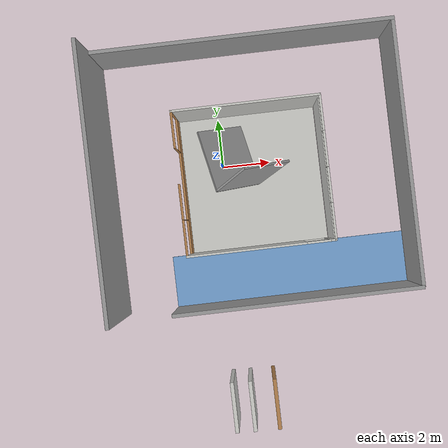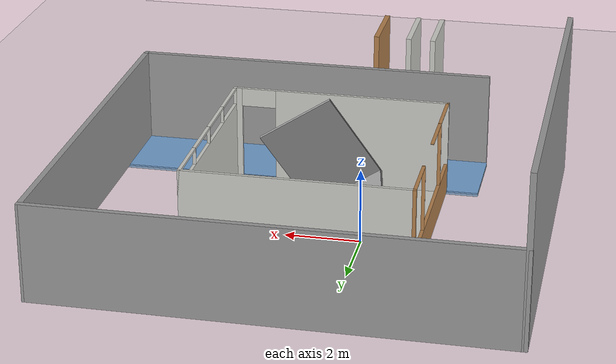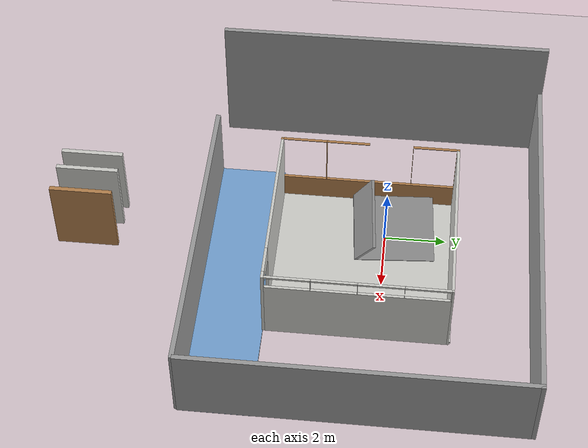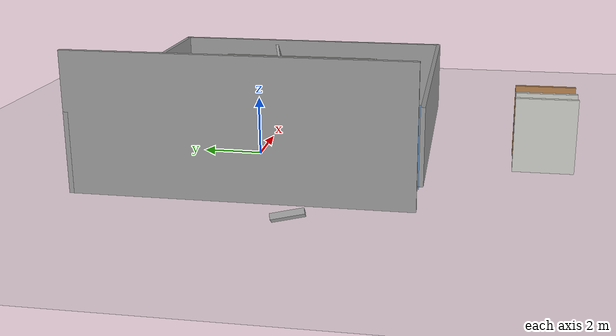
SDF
<sdf version="1.7">
 <world name="default">
  <light name="sun" type="directional">
   <pose>0 0 10 0 -0 0</pose>
   <diffuse>0.8 0.8 0.8 1</diffuse>
   <specular>0.2 0.2 0.2 1</specular>
   <attenuation>
    <range>1000</range>
    <constant>0.9</constant>
    <linear>0.01</linear>
    <quadratic>0.001</quadratic>
   </attenuation>
   <direction>0.01 0.01 -0.9</direction>
   <spot><inner_angle>0</inner_angle><outer_angle>0</outer_angle><falloff>0</falloff></spot>
   <include><uri>model://pedestal_ur5</uri></include>
  </light>
  <model name="ground_plane">
   <static>1</static>
   <link name="link">
    <collision name="collision">
     <geometry><plane><normal>0 0 1</normal><size>100 100</size></plane></geometry>
     <surface>
      <contact><collide_bitmask>65535</collide_bitmask></contact>
      <friction><ode><mu>100</mu><mu2>50</mu2></ode></friction>
     </surface>
    </collision>
    <visual name="visual">
     <cast_shadows>0</cast_shadows>
     <geometry><plane><normal>0 0 1</normal><size>100 100</size></plane></geometry>
     <material>
      <script><uri>file://media/materials/scripts/gazebo.material</uri><name>Gazebo/Grey</name></script>
     </material>
    </visual>
   </link>
  </model>
  <gravity>0 0 -9.8</gravity>
  <magnetic_field>6e-06 2.3e-05 -4.2e-05</magnetic_field>
  <atmosphere type="adiabatic"/>
  <physics name="default_physics" default="0" type="ode">
   <max_step_size>0.001</max_step_size>
   <real_time_factor>1</real_time_factor>
   <real_time_update_rate>1000</real_time_update_rate>
  </physics>
  <scene><ambient>0.4 0.4 0.4 1</ambient><background>0.7 0.7 0.7 1</background><shadows>1</shadows></scene>
  <spherical_coordinates>
   <surface_model>EARTH_WGS84</surface_model>
   <latitude_deg>0</latitude_deg>
   <longitude_deg>0</longitude_deg>
   <elevation>0</elevation>
   <heading_deg>0</heading_deg>
  </spherical_coordinates>
  <model name="B75_Room">
   <pose>1.23 -0.68 0 0 -0 0</pose>
   <link name="Wall_0">
    <pose>-2.94 0 0 0 -0 1.5708</pose>
    <visual name="Wall_0_Visual_0">
     <pose>-2.87782 0 1.305 0 -0 0</pose>
     <geometry><box><size>0.084362 0.09 2.61</size></box></geometry>
     <material>
      <script><uri>file://media/materials/scripts/gazebo.material</uri><name>Gazebo/Wood</name></script>
      <ambient>0.8 0.8 0.8 1</ambient>
     </material>
     <meta><layer>0</layer></meta>
    </visual>
    <collision name="Wall_0_Collision_0">
     <geometry><box><size>0.084362 0.09 2.61</size></box></geometry>
     <pose>-2.87782 0 1.305 0 -0 0</pose>
    </collision>
    <visual name="Wall_0_Visual_1">
     <pose>0.042181 0 0.425 0 -0 0</pose>
     <geometry><box><size>5.75564 0.09 0.85</size></box></geometry>
     <material>
      <script><uri>file://media/materials/scripts/gazebo.material</uri><name>Gazebo/Wood</name></script>
      <ambient>0.8 0.8 0.8 1</ambient>
     </material>
     <meta><layer>0</layer></meta>
    </visual>
    <collision name="Wall_0_Collision_1">
     <geometry><box><size>5.75564 0.09 0.85</size></box></geometry>
     <pose>0.042181 0 0.425 0 -0 0</pose>
    </collision>
    <visual name="Wall_0_Visual_2">
     <pose>-1.41237 0 1.73 0 -0 0</pose>
     <geometry><box><size>0.026548 0.09 1.76</size></box></geometry>
     <material>
      <script><uri>file://media/materials/scripts/gazebo.material</uri><name>Gazebo/Wood</name></script>
      <ambient>0.8 0.8 0.8 1</ambient>
     </material>
     <meta><layer>0</layer></meta>
    </visual>
    <collision name="Wall_0_Collision_2">
     <geometry><box><size>0.026548 0.09 1.76</size></box></geometry>
     <pose>-1.41237 0 1.73 0 -0 0</pose>
    </collision>
    <visual name="Wall_0_Visual_3">
     <pose>1.41154 0 1.73 0 -0 0</pose>
     <geometry><box><size>0.012383 0.09 1.76</size></box></geometry>
     <material>
      <script><uri>file://media/materials/scripts/gazebo.material</uri><name>Gazebo/Wood</name></script>
      <ambient>0.8 0.8 0.8 1</ambient>
     </material>
     <meta><layer>0</layer></meta>
    </visual>
    <collision name="Wall_0_Collision_3">
     <geometry><box><size>0.012383 0.09 1.76</size></box></geometry>
     <pose>1.41154 0 1.73 0 -0 0</pose>
    </collision>
    <visual name="Wall_0_Visual_4">
     <pose>2.87387 0 1.73 0 -0 0</pose>
     <geometry><box><size>0.092266 0.09 1.76</size></box></geometry>
     <material>
      <script><uri>file://media/materials/scripts/gazebo.material</uri><name>Gazebo/Wood</name></script>
      <ambient>0.8 0.8 0.8 1</ambient>
     </material>
     <meta><layer>0</layer></meta>
    </visual>
    <collision name="Wall_0_Collision_4">
     <geometry><box><size>0.092266 0.09 1.76</size></box></geometry>
     <pose>2.87387 0 1.73 0 -0 0</pose>
    </collision>
    <visual name="Wall_0_Visual_5">
     <pose>-2.13064 0 2.6 0 -0 0</pose>
     <geometry><box><size>1.41 0.09 0.02</size></box></geometry>
     <material>
      <script><uri>file://media/materials/scripts/gazebo.material</uri><name>Gazebo/Wood</name></script>
      <ambient>0.8 0.8 0.8 1</ambient>
     </material>
     <meta><layer>0</layer></meta>
    </visual>
    <collision name="Wall_0_Collision_5">
     <geometry><box><size>1.41 0.09 0.02</size></box></geometry>
     <pose>-2.13064 0 2.6 0 -0 0</pose>
    </collision>
    <visual name="Wall_0_Visual_6">
     <pose>-0.701869 0 2.6 0 -0 0</pose>
     <geometry><box><size>1.39444 0.09 0.02</size></box></geometry>
     <material>
      <script><uri>file://media/materials/scripts/gazebo.material</uri><name>Gazebo/Wood</name></script>
      <ambient>0.8 0.8 0.8 1</ambient>
     </material>
     <meta><layer>0</layer></meta>
    </visual>
    <collision name="Wall_0_Collision_6">
     <geometry><box><size>1.39444 0.09 0.02</size></box></geometry>
     <pose>-0.701869 0 2.6 0 -0 0</pose>
    </collision>
    <visual name="Wall_0_Visual_7">
     <pose>2.12273 0 2.6 0 -0 0</pose>
     <geometry><box><size>1.41 0.09 0.02</size></box></geometry>
     <material>
      <script><uri>file://media/materials/scripts/gazebo.material</uri><name>Gazebo/Wood</name></script>
      <ambient>0.8 0.8 0.8 1</ambient>
     </material>
     <meta><layer>0</layer></meta>
    </visual>
    <collision name="Wall_0_Collision_7">
     <geometry><box><size>1.41 0.09 0.02</size></box></geometry>
     <pose>2.12273 0 2.6 0 -0 0</pose>
    </collision>
   </link>
   <link name="Wall_2">
    <collision name="Wall_2_Collision">
     <geometry><box><size>5.97 0.09 2.61</size></box></geometry>
     <pose>0 0 1.305 0 -0 0</pose>
    </collision>
    <visual name="Wall_2_Visual">
     <pose>0 0 1.305 0 -0 0</pose>
     <geometry><box><size>5.97 0.09 2.61</size></box></geometry>
     <material>
      <script><uri>file://media/materials/scripts/gazebo.material</uri><name>Gazebo/CeilingTiled</name></script>
      <ambient>1 1 1 1</ambient>
     </material>
     <meta><layer>0</layer></meta>
    </visual>
    <pose>-0 2.875 0 0 -0 0</pose>
   </link>
   <link name="Wall_4">
    <pose>2.94 0 0 0 -0 -1.5708</pose>
    <visual name="Wall_4_Visual_0">
     <pose>-2.88914 0 1.305 0 -0 0</pose>
     <geometry><box><size>0.061715 0.09 2.61</size></box></geometry>
     <material>
      <script><uri>file://media/materials/scripts/gazebo.material</uri><name>Gazebo/CeilingTiled</name></script>
      <ambient>1 1 1 1</ambient>
     </material>
     <meta><layer>0</layer></meta>
    </visual>
    <collision name="Wall_4_Collision_0">
     <geometry><box><size>0.061715 0.09 2.61</size></box></geometry>
     <pose>-2.88914 0 1.305 0 -0 0</pose>
    </collision>
    <visual name="Wall_4_Visual_1">
     <pose>0.030858 0 1.075 0 -0 0</pose>
     <geometry><box><size>5.77829 0.09 2.15</size></box></geometry>
     <material>
      <script><uri>file://media/materials/scripts/gazebo.material</uri><name>Gazebo/CeilingTiled</name></script>
      <ambient>1 1 1 1</ambient>
     </material>
     <meta><layer>0</layer></meta>
    </visual>
    <collision name="Wall_4_Collision_1">
     <geometry><box><size>5.77829 0.09 2.15</size></box></geometry>
     <pose>0.030858 0 1.075 0 -0 0</pose>
    </collision>
    <visual name="Wall_4_Visual_2">
     <pose>-1.44317 0 2.38 0 -0 0</pose>
     <geometry><box><size>0.010235 0.09 0.46</size></box></geometry>
     <material>
      <script><uri>file://media/materials/scripts/gazebo.material</uri><name>Gazebo/CeilingTiled</name></script>
      <ambient>1 1 1 1</ambient>
     </material>
     <meta><layer>0</layer></meta>
    </visual>
    <collision name="Wall_4_Collision_2">
     <geometry><box><size>0.010235 0.09 0.46</size></box></geometry>
     <pose>-1.44317 0 2.38 0 -0 0</pose>
    </collision>
    <visual name="Wall_4_Visual_3">
     <pose>-0.018549 0 2.38 0 -0 0</pose>
     <geometry><box><size>0.019002 0.09 0.46</size></box></geometry>
     <material>
      <script><uri>file://media/materials/scripts/gazebo.material</uri><name>Gazebo/CeilingTiled</name></script>
      <ambient>1 1 1 1</ambient>
     </material>
     <meta><layer>0</layer></meta>
    </visual>
    <collision name="Wall_4_Collision_3">
     <geometry><box><size>0.019002 0.09 0.46</size></box></geometry>
     <pose>-0.018549 0 2.38 0 -0 0</pose>
    </collision>
    <visual name="Wall_4_Visual_4">
     <pose>1.40747 0 2.38 0 -0 0</pose>
     <geometry><box><size>0.013027 0.09 0.46</size></box></geometry>
     <material>
      <script><uri>file://media/materials/scripts/gazebo.material</uri><name>Gazebo/CeilingTiled</name></script>
      <ambient>1 1 1 1</ambient>
     </material>
     <meta><layer>0</layer></meta>
    </visual>
    <collision name="Wall_4_Collision_4">
     <geometry><box><size>0.013027 0.09 0.46</size></box></geometry>
     <pose>1.40747 0 2.38 0 -0 0</pose>
    </collision>
    <visual name="Wall_4_Visual_5">
     <pose>2.87199 0 2.38 0 -0 0</pose>
     <geometry><box><size>0.096021 0.09 0.46</size></box></geometry>
     <material>
      <script><uri>file://media/materials/scripts/gazebo.material</uri><name>Gazebo/CeilingTiled</name></script>
      <ambient>1 1 1 1</ambient>
     </material>
     <meta><layer>0</layer></meta>
    </visual>
    <collision name="Wall_4_Collision_5">
     <geometry><box><size>0.096021 0.09 0.46</size></box></geometry>
     <pose>2.87199 0 2.38 0 -0 0</pose>
    </collision>
    <visual name="Wall_4_Visual_6">
     <pose>-2.15328 0 2.58 0 -0 0</pose>
     <geometry><box><size>1.41 0.09 0.06</size></box></geometry>
     <material>
      <script><uri>file://media/materials/scripts/gazebo.material</uri><name>Gazebo/CeilingTiled</name></script>
      <ambient>1 1 1 1</ambient>
     </material>
     <meta><layer>0</layer></meta>
    </visual>
    <collision name="Wall_4_Collision_6">
     <geometry><box><size>1.41 0.09 0.06</size></box></geometry>
     <pose>-2.15328 0 2.58 0 -0 0</pose>
    </collision>
    <visual name="Wall_4_Visual_7">
     <pose>-0.73305 0 2.58 0 -0 0</pose>
     <geometry><box><size>1.41 0.09 0.06</size></box></geometry>
     <material>
      <script><uri>file://media/materials/scripts/gazebo.material</uri><name>Gazebo/CeilingTiled</name></script>
      <ambient>1 1 1 1</ambient>
     </material>
     <meta><layer>0</layer></meta>
    </visual>
    <collision name="Wall_4_Collision_7">
     <geometry><box><size>1.41 0.09 0.06</size></box></geometry>
     <pose>-0.73305 0 2.58 0 -0 0</pose>
    </collision>
    <visual name="Wall_4_Visual_8">
     <pose>0.695952 0 2.58 0 -0 0</pose>
     <geometry><box><size>1.41 0.09 0.06</size></box></geometry>
     <material>
      <script><uri>file://media/materials/scripts/gazebo.material</uri><name>Gazebo/CeilingTiled</name></script>
      <ambient>1 1 1 1</ambient>
     </material>
     <meta><layer>0</layer></meta>
    </visual>
    <collision name="Wall_4_Collision_8">
     <geometry><box><size>1.41 0.09 0.06</size></box></geometry>
     <pose>0.695952 0 2.58 0 -0 0</pose>
    </collision>
    <visual name="Wall_4_Visual_9">
     <pose>2.11898 0 2.58 0 -0 0</pose>
     <geometry><box><size>1.41 0.09 0.06</size></box></geometry>
     <material>
      <script><uri>file://media/materials/scripts/gazebo.material</uri><name>Gazebo/CeilingTiled</name></script>
      <ambient>1 1 1 1</ambient>
     </material>
     <meta><layer>0</layer></meta>
    </visual>
    <collision name="Wall_4_Collision_9">
     <geometry><box><size>1.41 0.09 0.06</size></box></geometry>
     <pose>2.11898 0 2.58 0 -0 0</pose>
    </collision>
   </link>
   <link name="Wall_6">
    <pose>-0 -2.875 0 0 -0 3.14159</pose>
    <visual name="Wall_6_Visual_0">
     <pose>-2.86065 0 1.305 0 -0 0</pose>
     <geometry><box><size>0.248701 0.09 2.61</size></box></geometry>
     <material>
      <script><uri>file://media/materials/scripts/gazebo.material</uri><name>Gazebo/CeilingTiled</name></script>
      <ambient>1 1 1 1</ambient>
     </material>
     <meta><layer>0</layer></meta>
    </visual>
    <collision name="Wall_6_Collision_0">
     <geometry><box><size>0.248701 0.09 2.61</size></box></geometry>
     <pose>-2.86065 0 1.305 0 -0 0</pose>
    </collision>
    <visual name="Wall_6_Visual_1">
     <pose>0.594351 0 1.305 0 -0 0</pose>
     <geometry><box><size>4.7813 0.09 2.61</size></box></geometry>
     <material>
      <script><uri>file://media/materials/scripts/gazebo.material</uri><name>Gazebo/CeilingTiled</name></script>
      <ambient>1 1 1 1</ambient>
     </material>
     <meta><layer>0</layer></meta>
    </visual>
    <collision name="Wall_6_Collision_1">
     <geometry><box><size>4.7813 0.09 2.61</size></box></geometry>
     <pose>0.594351 0 1.305 0 -0 0</pose>
    </collision>
    <visual name="Wall_6_Visual_2">
     <pose>-2.2663 0 0 0 -0 0</pose>
     <geometry><box><size>0.94 0.09 0</size></box></geometry>
     <material>
      <script><uri>file://media/materials/scripts/gazebo.material</uri><name>Gazebo/CeilingTiled</name></script>
      <ambient>1 1 1 1</ambient>
     </material>
     <meta><layer>0</layer></meta>
    </visual>
    <collision name="Wall_6_Collision_2">
     <geometry><box><size>0.94 0.09 0</size></box></geometry>
     <pose>-2.2663 0 0 0 -0 0</pose>
    </collision>
    <visual name="Wall_6_Visual_3">
     <pose>-2.2663 0 2.355 0 -0 0</pose>
     <geometry><box><size>0.94 0.09 0.51</size></box></geometry>
     <material>
      <script><uri>file://media/materials/scripts/gazebo.material</uri><name>Gazebo/CeilingTiled</name></script>
      <ambient>1 1 1 1</ambient>
     </material>
     <meta><layer>0</layer></meta>
    </visual>
    <collision name="Wall_6_Collision_3">
     <geometry><box><size>0.94 0.09 0.51</size></box></geometry>
     <pose>-2.2663 0 2.355 0 -0 0</pose>
    </collision>
   </link>
   <static>1</static>
  </model>
  <model name="B75_Objects">
   <link name="link_1">
    <inertial>
     <mass>0.512265</mass>
     <inertia>
      <ixx>0.491819</ixx>
      <ixy>0</ixy>
      <ixz>0</ixz>
      <iyy>0.191424</iyy>
      <iyz>0</iyz>
      <izz>0.301106</izz>
     </inertia>
    </inertial>
    <pose>3.32698 1.4145 1.38303 0 -0 0</pose>
    <visual name="visual">
     <geometry><box><size>0.091197 2.65428 2.11001</size></box></geometry>
     <material>
      <lighting>1</lighting>
      <script><uri>file://media/materials/scripts/gazebo.material</uri><name>Gazebo/Grey</name></script>
      <shader type="pixel"><normal_map>__default__</normal_map></shader>
      <ambient>0.3 0.3 0.3 1</ambient>
      <diffuse>0.7 0.7 0.7 1</diffuse>
      <specular>0.01 0.01 0.01 1</specular>
      <emissive>0 0 0 1</emissive>
     </material>
    </visual>
    <collision name="collision">
     <geometry><box><size>0.091197 2.65428 2.11562</size></box></geometry>
     <surface>
      <friction>
       <ode><mu>1</mu><mu2>1</mu2><fdir1>0 0 0</fdir1><slip1>0</slip1><slip2>0</slip2></ode>
       <torsional>
        <coefficient>1</coefficient>
        <patch_radius>0</patch_radius>
        <surface_radius>0</surface_radius>
        <use_patch_radius>1</use_patch_radius>
        <ode><slip>0</slip></ode>
       </torsional>
      </friction>
      <bounce><restitution_coefficient>0</restitution_coefficient><threshold>1e+06</threshold></bounce>
      <contact>
       <collide_without_contact>0</collide_without_contact>
       <collide_without_contact_bitmask>1</collide_without_contact_bitmask>
       <collide_bitmask>1</collide_bitmask>
       <ode>
        <soft_cfm>0</soft_cfm>
        <soft_erp>0.2</soft_erp>
        <kp>1e+13</kp>
        <kd>1</kd>
        <max_vel>0.01</max_vel>
        <min_depth>0</min_depth>
       </ode>
       <bullet>
        <split_impulse>1</split_impulse>
        <split_impulse_penetration_threshold>-0.01</split_impulse_penetration_threshold>
        <soft_cfm>0</soft_cfm>
        <soft_erp>0.2</soft_erp>
        <kp>1e+13</kp>
        <kd>1</kd>
       </bullet>
      </contact>
     </surface>
    </collision>
   </link>
   <link name="link_2">
    <inertial>
     <mass>0.468337</mass>
     <inertia>
      <ixx>0.173142</ixx>
      <ixy>0</ixy>
      <ixz>0</ixz>
      <iyy>0.413506</iyy>
      <iyz>0</iyz>
      <izz>0.240991</izz>
     </inertia>
    </inertial>
    <pose>4.6132 0.122662 1.38303 0 -0 0</pose>
    <visual name="visual">
     <geometry><box><size>2.4833 0.089668 2.11</size></box></geometry>
     <material>
      <lighting>1</lighting>
      <script><uri>file://media/materials/scripts/gazebo.material</uri><name>Gazebo/Grey</name></script>
      <shader type="pixel"><normal_map>__default__</normal_map></shader>
      <ambient>0.3 0.3 0.3 1</ambient>
      <diffuse>0.7 0.7 0.7 1</diffuse>
      <specular>0.01 0.01 0.01 1</specular>
      <emissive>0 0 0 1</emissive>
     </material>
    </visual>
    <collision name="collision">
     <geometry><box><size>2.4833 0.089668 2.10436</size></box></geometry>
     <surface>
      <friction>
       <ode><mu>1</mu><mu2>1</mu2><fdir1>0 0 0</fdir1><slip1>0</slip1><slip2>0</slip2></ode>
       <torsional>
        <coefficient>1</coefficient>
        <patch_radius>0</patch_radius>
        <surface_radius>0</surface_radius>
        <use_patch_radius>1</use_patch_radius>
        <ode><slip>0</slip></ode>
       </torsional>
      </friction>
      <bounce><restitution_coefficient>0</restitution_coefficient><threshold>1e+06</threshold></bounce>
      <contact>
       <collide_without_contact>0</collide_without_contact>
       <collide_without_contact_bitmask>1</collide_without_contact_bitmask>
       <collide_bitmask>1</collide_bitmask>
       <ode>
        <soft_cfm>0</soft_cfm>
        <soft_erp>0.2</soft_erp>
        <kp>1e+13</kp>
        <kd>1</kd>
        <max_vel>0.01</max_vel>
        <min_depth>0</min_depth>
       </ode>
       <bullet>
        <split_impulse>1</split_impulse>
        <split_impulse_penetration_threshold>-0.01</split_impulse_penetration_threshold>
        <soft_cfm>0</soft_cfm>
        <soft_erp>0.2</soft_erp>
        <kp>1e+13</kp>
        <kd>1</kd>
       </bullet>
      </contact>
     </surface>
    </collision>
   </link>
   <link name="link_3">
    <inertial>
     <mass>0.133825</mass>
     <inertia>
      <ixx>0.0148882</ixx>
      <ixy>0</ixy>
      <ixz>0</ixz>
      <iyy>0.00433232</iyy>
      <iyz>0</iyz>
      <izz>0.0117483</izz>
     </inertia>
    </inertial>
    <pose>0.17373 0.768579 0.625903 0 -0 0</pose>
    <visual name="visual">
     <geometry><box><size>0.23 1.24 0.585</size></box></geometry>
     <material>
      <lighting>1</lighting>
      <script><uri>file://media/materials/scripts/gazebo.material</uri><name>Gazebo/Grey</name></script>
      <shader type="pixel"><normal_map>__default__</normal_map></shader>
      <ambient>0.3 0.3 0.3 1</ambient>
      <diffuse>0.7 0.7 0.7 1</diffuse>
      <specular>0.01 0.01 0.01 1</specular>
      <emissive>0 0 0 1</emissive>
     </material>
    </visual>
    <collision name="collision">
     <geometry><box><size>0.23 1.24 0.585</size></box></geometry>
     <surface>
      <friction>
       <ode><mu>1</mu><mu2>1</mu2><fdir1>0 0 0</fdir1><slip1>0</slip1><slip2>0</slip2></ode>
       <torsional>
        <coefficient>1</coefficient>
        <patch_radius>0</patch_radius>
        <surface_radius>0</surface_radius>
        <use_patch_radius>1</use_patch_radius>
        <ode><slip>0</slip></ode>
       </torsional>
      </friction>
      <bounce><restitution_coefficient>0</restitution_coefficient><threshold>1e+06</threshold></bounce>
      <contact>
       <collide_without_contact>0</collide_without_contact>
       <collide_without_contact_bitmask>1</collide_without_contact_bitmask>
       <collide_bitmask>1</collide_bitmask>
       <ode>
        <soft_cfm>0</soft_cfm>
        <soft_erp>0.2</soft_erp>
        <kp>1e+13</kp>
        <kd>1</kd>
        <max_vel>0.01</max_vel>
        <min_depth>0</min_depth>
       </ode>
       <bullet>
        <split_impulse>1</split_impulse>
        <split_impulse_penetration_threshold>-0.01</split_impulse_penetration_threshold>
        <soft_cfm>0</soft_cfm>
        <soft_erp>0.2</soft_erp>
        <kp>1e+13</kp>
        <kd>1</kd>
       </bullet>
      </contact>
     </surface>
    </collision>
   </link>
   <static>0</static>
   <pose>0.107159 -1.76806 -2.44656 -0.294975 -0.988911 0.455231</pose>
  </model>
  <model name="texture_test_2">
   <pose>0.285 -7.25691 0 0 -0 0</pose>
   <link name="Wall_0">
    <collision name="Wall_0_Collision">
     <geometry><box><size>2 0.15 2.5</size></box></geometry>
     <pose>0 0 1.25 0 -0 0</pose>
    </collision>
    <visual name="Wall_0_Visual">
     <pose>0 0 1.25 0 -0 0</pose>
     <geometry><box><size>2 0.15 2.5</size></box></geometry>
     <material>
      <script><uri>file://media/materials/scripts/gazebo.material</uri><name>Gazebo/Wood</name></script>
      <ambient>1 1 1 1</ambient>
     </material>
     <meta><layer>0</layer></meta>
    </visual>
    <pose>0.845 -2.4675 0 0 -0 -1.5708</pose>
   </link>
   <link name="Wall_2">
    <collision name="Wall_2_Collision">
     <geometry><box><size>2 0.15 2.5</size></box></geometry>
     <pose>0 0 1.25 0 -0 0</pose>
    </collision>
    <visual name="Wall_2_Visual">
     <pose>0 0 1.25 0 -0 0</pose>
     <geometry><box><size>2 0.15 2.5</size></box></geometry>
     <material>
      <script><uri>file://media/materials/scripts/gazebo.material</uri><name>Gazebo/CeilingTiled</name></script>
      <ambient>0.913725 0.72549 0.431373 1</ambient>
     </material>
     <meta><layer>0</layer></meta>
    </visual>
    <pose>-0.125 -2.4475 0 0 -0 -1.5708</pose>
   </link>
   <link name="Wall_4">
    <collision name="Wall_4_Collision">
     <geometry><box><size>2 0.15 2.5</size></box></geometry>
     <pose>0 0 1.25 0 -0 0</pose>
    </collision>
    <visual name="Wall_4_Visual">
     <pose>0 0 1.25 0 -0 0</pose>
     <geometry><box><size>2 0.15 2.5</size></box></geometry>
     <material>
      <script><uri>file://media/materials/scripts/gazebo.material</uri><name>Gazebo/CeilingTiled</name></script>
      <ambient>0.827451 0.843137 0.811765 1</ambient>
     </material>
     <meta><layer>0</layer></meta>
    </visual>
    <pose>-0.845 -2.4175 0 0 -0 -1.5708</pose>
   </link>
   <static>1</static>
  </model>
  <model name="b75_floor">
   <pose>1.21094 -0.610385 -0.055 0 -0 0</pose>
   <link name="Wall_0">
    <collision name="Wall_0_Collision">
     <geometry><box><size>5.81 5.8 0.1</size></box></geometry>
     <pose>0 0 0.05 -0.055 -0 0</pose>
    </collision>
    <visual name="Wall_0_Visual">
     <pose>0 0 0.01 0 -0 0</pose>
     <geometry><box><size>5.81 5.8 0.1</size></box></geometry>
     <material>
      <script><uri>file://media/materials/scripts/gazebo.material</uri><name>Gazebo/CeilingTiled</name></script>
      <ambient>1 0.764706 0.305882 1</ambient>
     </material>
     <meta><layer>0</layer></meta>
    </visual>
    <pose>0 -0 -0 0 -0 1.5708</pose>
   </link>
   <static>1</static>
  </model>
  <model name="b75_corridor">
   <pose>2.4025 -2.9375 0 0 -0 0</pose>
   <link name="Wall_2">
    <collision name="Wall_2_Collision">
     <geometry><box><size>10 0.15 2.6</size></box></geometry>
     <pose>0 0 1.3 0 -0 0</pose>
    </collision>
    <visual name="Wall_2_Visual">
     <pose>0 0 1.3 0 -0 0</pose>
     <geometry><box><size>10 0.15 2.6</size></box></geometry>
     <material>
      <script><uri>file://media/materials/scripts/gazebo.material</uri><name>Gazebo/Grey</name></script>
      <ambient>1 1 1 1</ambient>
     </material>
     <meta><layer>0</layer></meta>
    </visual>
    <pose>0.0095 -2.8625 0 0 -0 0</pose>
   </link>
   <link name="Wall_8">
    <collision name="Wall_8_Collision">
     <geometry><box><size>10 2.15 0.1</size></box></geometry>
     <pose>0 0 0.05 0 -0 0</pose>
    </collision>
    <visual name="Wall_8_Visual">
     <pose>0 0 -0.03 0 -0 0</pose>
     <geometry><box><size>10 2.15 0.1</size></box></geometry>
     <material>
      <script><uri>file://media/materials/scripts/gazebo.material</uri><name>Gazebo/Grey</name></script>
      <ambient>0.447059 0.623529 0.811765 1</ambient>
     </material>
     <meta><layer>0</layer></meta>
    </visual>
    <pose>-0.0095 -1.7185 0 0 -0 0</pose>
   </link>
   <static>1</static>
  </model>
  <model name="B75_corridor_2">
   <pose>1.31848 -0.440997 0 0 -0 0</pose>
   <link name="Wall_12">
    <collision name="Wall_12_Collision">
     <geometry><box><size>12.2381 0.15 2.6</size></box></geometry>
     <pose>0 0 1.3 0 -0 0</pose>
    </collision>
    <visual name="Wall_12_Visual">
     <pose>0 0 1.3 0 -0 0</pose>
     <geometry><box><size>12.2381 0.15 2.6</size></box></geometry>
     <material>
      <script><uri>file://media/materials/scripts/gazebo.material</uri><name>Gazebo/Grey</name></script>
      <ambient>1 1 1 1</ambient>
     </material>
     <meta><layer>0</layer></meta>
    </visual>
    <pose>-0.005485 5.285 0 0 -0 0.000496</pose>
   </link>
   <link name="Wall_7">
    <collision name="Wall_7_Collision">
     <geometry><box><size>10.72 0.15 2.6</size></box></geometry>
     <pose>0 0 1.3 0 -0 0</pose>
    </collision>
    <visual name="Wall_7_Visual">
     <pose>0 0 1.3 0 -0 0</pose>
     <geometry><box><size>10.72 0.15 2.6</size></box></geometry>
     <material>
      <script><uri>file://media/materials/scripts/gazebo.material</uri><name>Gazebo/Grey</name></script>
      <ambient>1 1 1 1</ambient>
     </material>
     <meta><layer>0</layer></meta>
    </visual>
    <pose>6.04401 0.002997 0 0 -0 -1.56976</pose>
   </link>
   <link name="Wall_9">
    <collision name="Wall_9_Collision">
     <geometry><box><size>10.72 0.15 4.5</size></box></geometry>
     <pose>0 0 2.25 0 -0 0</pose>
    </collision>
    <visual name="Wall_9_Visual">
     <pose>0 0 2.25 0 -0 0</pose>
     <geometry><box><size>10.72 0.15 4.5</size></box></geometry>
     <material>
      <script><uri>file://media/materials/scripts/gazebo.material</uri><name>Gazebo/Grey</name></script>
      <ambient>1 1 1 1</ambient>
     </material>
     <meta><layer>0</layer></meta>
    </visual>
    <pose>-6.04448 -0.003003 0 0 -0 -1.56985</pose>
   </link>
   <static>1</static>
  </model>
 </world>
</sdf>
